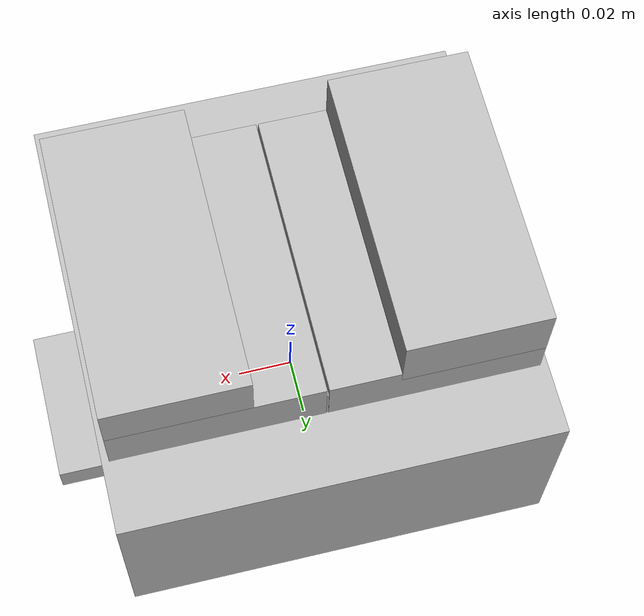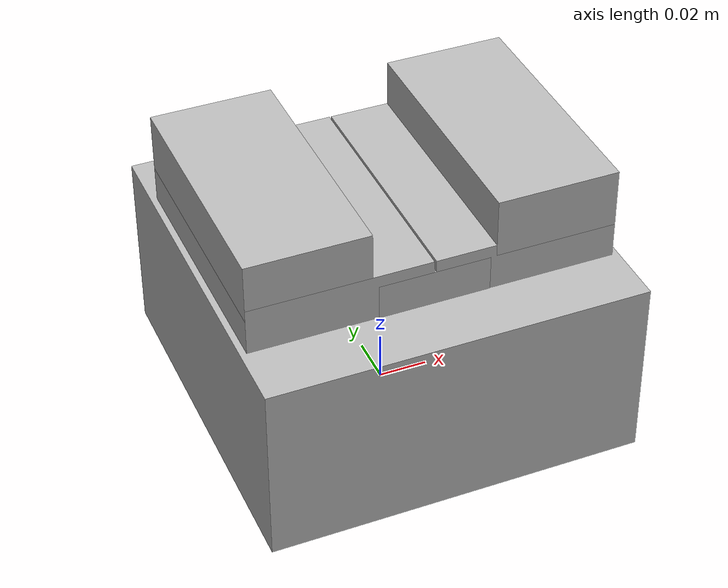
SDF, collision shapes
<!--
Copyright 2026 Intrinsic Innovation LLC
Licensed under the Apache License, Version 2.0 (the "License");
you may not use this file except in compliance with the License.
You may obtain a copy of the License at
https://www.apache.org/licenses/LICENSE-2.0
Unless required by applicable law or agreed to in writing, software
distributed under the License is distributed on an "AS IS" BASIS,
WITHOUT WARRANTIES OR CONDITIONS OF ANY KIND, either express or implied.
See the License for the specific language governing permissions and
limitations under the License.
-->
<?xml version="1.0" encoding="UTF-8"?>

<sdf version="1.6">
  <model name='air_vise'>
    <link name ="base_link">
      <visual name ="base">
        <geometry>
          <mesh>
            <uri>model://intrinsic/models/assets/imts/air_vise/base.glb</uri>
          </mesh>
        </geometry>
      </visual>
      <collision name ="collider_box.007">
        <pose>0.0 -0.0 0.0378 1.5708 -0.0 1.5708</pose>
        <geometry>
          <box>
            <size>0.15189 0.07559 0.15189</size>
          </box>
        </geometry>
      </collision>
      <collision name ="collider_box.008">
        <pose>0.0 0.0 0.07463 1.5708 -0.0 1.5708</pose>
        <geometry>
          <box>
            <size>0.1016 0.03056 0.04445</size>
          </box>
        </geometry>
      </collision>
      <collision name ="collider_box.009">
        <pose>0.08443 0.00522 0.01712 1.5708 -0.0 1.5708</pose>
        <geometry>
          <box>
            <size>0.0543 0.01119 0.01694</size>
          </box>
        </geometry>
      </collision>
    </link>
    <link name ="finger1_link">
      <visual name ="finger1">
        <geometry>
          <mesh>
            <uri>model://intrinsic/models/assets/imts/air_vise/finger1.glb</uri>
          </mesh>
        </geometry>
      </visual>
      <collision name ="collider_box.001">
        <pose>-0.04898 0.00019 0.10182 1.5708 -0.0 1.5708</pose>
        <geometry>
          <box>
            <size>0.1016 0.02374 0.04884</size>
          </box>
        </geometry>
      </collision>
      <collision name ="collider_box.002">
        <pose>-0.03689 0.00019 0.08512 1.5708 -0.0 1.5708</pose>
        <geometry>
          <box>
            <size>0.1016 0.01905 0.07302</size>
          </box>
        </geometry>
      </collision>
      <collision name ="collider_box.003">
        <pose>-0.04197 0.00019 0.07304 1.5708 -0.0 1.5708</pose>
        <geometry>
          <box>
            <size>0.05055 0.02031 0.06286</size>
          </box>
        </geometry>
      </collision>
    </link>
    <link name ="finger2_link">
      <visual name ="finger2">
        <geometry>
          <mesh>
            <uri>model://intrinsic/models/assets/imts/air_vise/finger2.glb</uri>
          </mesh>
        </geometry>
      </visual>
      <collision name ="collider_box.004">
        <pose>0.04898 0.00019 0.10182 1.5708 -0.0 1.5708</pose>
        <geometry>
          <box>
            <size>0.1016 0.02374 0.04884</size>
          </box>
        </geometry>
      </collision>
      <collision name ="collider_box.005">
        <pose>0.03689 0.00019 0.08512 1.5708 -0.0 1.5708</pose>
        <geometry>
          <box>
            <size>0.1016 0.01905 0.07302</size>
          </box>
        </geometry>
      </collision>
      <collision name ="collider_box.006">
        <pose>0.04197 0.00019 0.07218 1.5708 -0.0 1.5708</pose>
        <geometry>
          <box>
            <size>0.05055 0.01858 0.06286</size>
          </box>
        </geometry>
      </collision>
    </link>
    <joint name="finger1_joint_prismatic" type="prismatic">
      <pose>0.0 0.0 0.0 0 0 0</pose>
      <parent>base_link</parent>
      <child>finger1_link</child>
      <axis>
        <xyz>-1.0 -0.0 0.0</xyz>
      </axis>
      <limit>
        <lower>0.0</lower>
        <upper>0.003</upper>
      </limit>
    </joint>
    <joint name="finger2_joint_prismatic" type="prismatic">
      <pose>0.0 0.0 0.0 0 0 0</pose>
      <parent>base_link</parent>
      <child>finger2_link</child>
      <axis>
        <xyz>1.0 0.0 0.0</xyz>
      </axis>
      <limit>
        <lower>0.0</lower>
        <upper>0.003</upper>
      </limit>
    </joint>

    <frame name='align' attached_to='base_link' intrinsic:create_entity='true'>
      <pose relative_to="base_link">0.0 0.0 0.150040 3.141592653589793 0.0 0.0</pose>
    </frame>

  </model>
</sdf>
